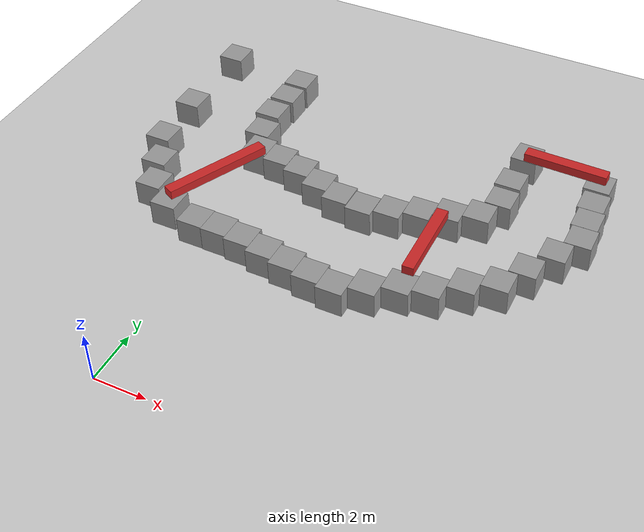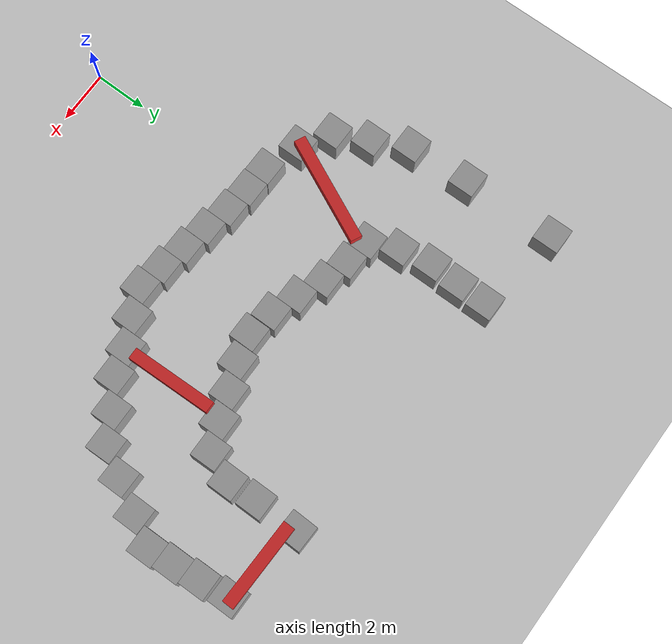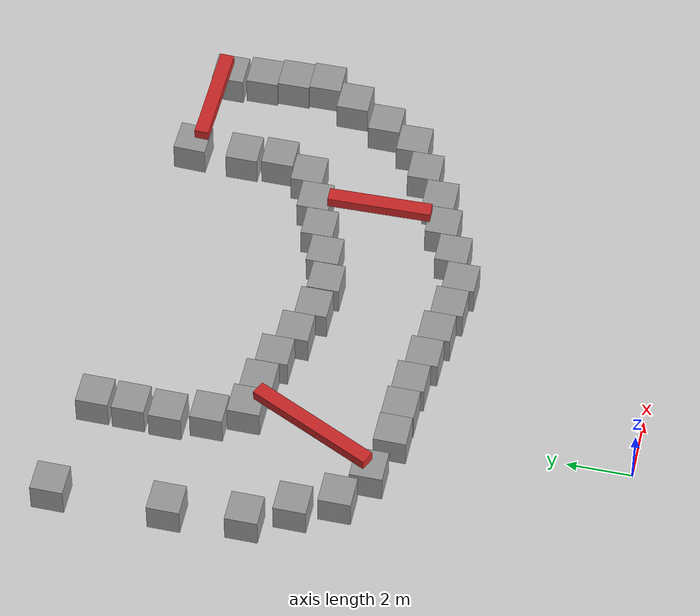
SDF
<sdf version="1.7">
 <world name="default">
  <model name="ground_plane">
   <static>1</static>
   <link name="link">
    <collision name="collision">
     <geometry><plane><normal>0 0 1</normal><size>100 100</size></plane></geometry>
     <surface><friction><ode><mu>100</mu><mu2>50</mu2></ode></friction></surface>
    </collision>
    <visual name="visual">
     <cast_shadows>0</cast_shadows>
     <geometry><plane><normal>0 0 1</normal><size>100 100</size></plane></geometry>
     <material>
      <script><uri>file://media/materials/scripts/gazebo.material</uri><name>Gazebo/Grey</name></script>
     </material>
    </visual>
   </link>
  </model>
  <model name="unit_box">
   <pose>-0.526604 7.20124 0.5 0 0 -0.00372</pose>
   <link name="link">
    <inertial>
     <mass>1</mass>
     <inertia>
      <ixx>0.166667</ixx>
      <ixy>0</ixy>
      <ixz>0</ixz>
      <iyy>0.166667</iyy>
      <iyz>0</iyz>
      <izz>0.166667</izz>
     </inertia>
    </inertial>
    <collision name="collision"><geometry><box><size>1 1 1</size></box></geometry></collision>
    <visual name="visual">
     <geometry><box><size>1 1 1</size></box></geometry>
     <material>
      <script><name>Gazebo/Grey</name><uri>file://media/materials/scripts/gazebo.material</uri></script>
     </material>
    </visual>
   </link>
  </model>
  <model name="unit_box_0">
   <pose>-0.443298 11.6969 0.5 0 0 -0.000523</pose>
   <link name="link">
    <inertial>
     <mass>1</mass>
     <inertia>
      <ixx>0.166667</ixx>
      <ixy>0</ixy>
      <ixz>0</ixz>
      <iyy>0.166667</iyy>
      <iyz>0</iyz>
      <izz>0.166667</izz>
     </inertia>
    </inertial>
    <collision name="collision"><geometry><box><size>1 1 1</size></box></geometry></collision>
    <visual name="visual">
     <geometry><box><size>1 1 1</size></box></geometry>
     <material>
      <script><name>Gazebo/Grey</name><uri>file://media/materials/scripts/gazebo.material</uri></script>
     </material>
    </visual>
   </link>
  </model>
  <model name="unit_box_1">
   <pose>0.473311 7.1762 0.499995 -1e-05 -0 -0.00372</pose>
   <link name="link">
    <inertial>
     <mass>1</mass>
     <inertia>
      <ixx>0.166667</ixx>
      <ixy>0</ixy>
      <ixz>0</ixz>
      <iyy>0.166667</iyy>
      <iyz>0</iyz>
      <izz>0.166667</izz>
     </inertia>
    </inertial>
    <collision name="collision"><geometry><box><size>1 1 1</size></box></geometry></collision>
    <visual name="visual">
     <geometry><box><size>1 1 1</size></box></geometry>
     <material>
      <script><name>Gazebo/Grey</name><uri>file://media/materials/scripts/gazebo.material</uri></script>
     </material>
    </visual>
   </link>
  </model>
  <model name="unit_box_2">
   <pose>1.47302 7.07448 0.499995 0 1e-05 -0.003884</pose>
   <link name="link">
    <inertial>
     <mass>1</mass>
     <inertia>
      <ixx>0.166667</ixx>
      <ixy>0</ixy>
      <ixz>0</ixz>
      <iyy>0.166667</iyy>
      <iyz>0</iyz>
      <izz>0.166667</izz>
     </inertia>
    </inertial>
    <collision name="collision"><geometry><box><size>1 1 1</size></box></geometry></collision>
    <visual name="visual">
     <geometry><box><size>1 1 1</size></box></geometry>
     <material>
      <script><name>Gazebo/Grey</name><uri>file://media/materials/scripts/gazebo.material</uri></script>
     </material>
    </visual>
   </link>
  </model>
  <model name="unit_box_3">
   <pose>2.4724 6.86705 0.499995 -0 1e-05 -0.003816</pose>
   <link name="link">
    <inertial>
     <mass>1</mass>
     <inertia>
      <ixx>0.166667</ixx>
      <ixy>0</ixy>
      <ixz>0</ixz>
      <iyy>0.166667</iyy>
      <iyz>0</iyz>
      <izz>0.166667</izz>
     </inertia>
    </inertial>
    <collision name="collision"><geometry><box><size>1 1 1</size></box></geometry></collision>
    <visual name="visual">
     <geometry><box><size>1 1 1</size></box></geometry>
     <material>
      <script><name>Gazebo/Grey</name><uri>file://media/materials/scripts/gazebo.material</uri></script>
     </material>
    </visual>
   </link>
  </model>
  <model name="unit_box_4">
   <pose>0.557502 11.5442 0.5 0 -0 0.000137</pose>
   <link name="link">
    <inertial>
     <mass>1</mass>
     <inertia>
      <ixx>0.166667</ixx>
      <ixy>0</ixy>
      <ixz>0</ixz>
      <iyy>0.166667</iyy>
      <iyz>0</iyz>
      <izz>0.166667</izz>
     </inertia>
    </inertial>
    <collision name="collision"><geometry><box><size>1 1 1</size></box></geometry></collision>
    <visual name="visual">
     <geometry><box><size>1 1 1</size></box></geometry>
     <material>
      <script><name>Gazebo/Grey</name><uri>file://media/materials/scripts/gazebo.material</uri></script>
     </material>
    </visual>
   </link>
  </model>
  <model name="unit_box_5">
   <pose>1.56131 11.2931 0.499995 0 -1e-05 -0.001514</pose>
   <link name="link">
    <inertial>
     <mass>1</mass>
     <inertia>
      <ixx>0.166667</ixx>
      <ixy>0</ixy>
      <ixz>0</ixz>
      <iyy>0.166667</iyy>
      <iyz>0</iyz>
      <izz>0.166667</izz>
     </inertia>
    </inertial>
    <collision name="collision"><geometry><box><size>1 1 1</size></box></geometry></collision>
    <visual name="visual">
     <geometry><box><size>1 1 1</size></box></geometry>
     <material>
      <script><name>Gazebo/Grey</name><uri>file://media/materials/scripts/gazebo.material</uri></script>
     </material>
    </visual>
   </link>
  </model>
  <model name="unit_box_6">
   <pose>2.56069 10.8846 0.499995 -0 -1e-05 -0.001517</pose>
   <link name="link">
    <inertial>
     <mass>1</mass>
     <inertia>
      <ixx>0.166667</ixx>
      <ixy>0</ixy>
      <ixz>0</ixz>
      <iyy>0.166667</iyy>
      <iyz>0</iyz>
      <izz>0.166667</izz>
     </inertia>
    </inertial>
    <collision name="collision"><geometry><box><size>1 1 1</size></box></geometry></collision>
    <visual name="visual">
     <geometry><box><size>1 1 1</size></box></geometry>
     <material>
      <script><name>Gazebo/Grey</name><uri>file://media/materials/scripts/gazebo.material</uri></script>
     </material>
    </visual>
   </link>
  </model>
  <model name="unit_box_7">
   <pose>3.4724 6.69284 0.5 -0 1e-06 -0.002959</pose>
   <link name="link">
    <inertial>
     <mass>1</mass>
     <inertia>
      <ixx>0.166667</ixx>
      <ixy>0</ixy>
      <ixz>0</ixz>
      <iyy>0.166667</iyy>
      <iyz>0</iyz>
      <izz>0.166667</izz>
     </inertia>
    </inertial>
    <collision name="collision"><geometry><box><size>1 1 1</size></box></geometry></collision>
    <visual name="visual">
     <geometry><box><size>1 1 1</size></box></geometry>
     <material>
      <script><name>Gazebo/Grey</name><uri>file://media/materials/scripts/gazebo.material</uri></script>
     </material>
    </visual>
   </link>
  </model>
  <model name="unit_box_8">
   <pose>3.56065 10.5336 0.499995 1e-05 -0 -0.001533</pose>
   <link name="link">
    <inertial>
     <mass>1</mass>
     <inertia>
      <ixx>0.166667</ixx>
      <ixy>0</ixy>
      <ixz>0</ixz>
      <iyy>0.166667</iyy>
      <iyz>0</iyz>
      <izz>0.166667</izz>
     </inertia>
    </inertial>
    <collision name="collision"><geometry><box><size>1 1 1</size></box></geometry></collision>
    <visual name="visual">
     <geometry><box><size>1 1 1</size></box></geometry>
     <material>
      <script><name>Gazebo/Grey</name><uri>file://media/materials/scripts/gazebo.material</uri></script>
     </material>
    </visual>
   </link>
  </model>
  <model name="unit_box_9">
   <pose>4.47191 6.50319 0.5 -0 -0 -0.002823</pose>
   <link name="link">
    <inertial>
     <mass>1</mass>
     <inertia>
      <ixx>0.166667</ixx>
      <ixy>0</ixy>
      <ixz>0</ixz>
      <iyy>0.166667</iyy>
      <iyz>0</iyz>
      <izz>0.166667</izz>
     </inertia>
    </inertial>
    <collision name="collision"><geometry><box><size>1 1 1</size></box></geometry></collision>
    <visual name="visual">
     <geometry><box><size>1 1 1</size></box></geometry>
     <material>
      <script><name>Gazebo/Grey</name><uri>file://media/materials/scripts/gazebo.material</uri></script>
     </material>
    </visual>
   </link>
  </model>
  <model name="unit_box_10">
   <pose>4.58383 10.3824 0.499995 0 -1e-05 0</pose>
   <link name="link">
    <inertial>
     <mass>1</mass>
     <inertia>
      <ixx>0.166667</ixx>
      <ixy>0</ixy>
      <ixz>0</ixz>
      <iyy>0.166667</iyy>
      <iyz>0</iyz>
      <izz>0.166667</izz>
     </inertia>
    </inertial>
    <collision name="collision"><geometry><box><size>1 1 1</size></box></geometry></collision>
    <visual name="visual">
     <geometry><box><size>1 1 1</size></box></geometry>
     <material>
      <script><name>Gazebo/Grey</name><uri>file://media/materials/scripts/gazebo.material</uri></script>
     </material>
    </visual>
   </link>
  </model>
  <model name="unit_box_11">
   <pose>5.47152 6.35499 0.5 -0 -0 -0.002771</pose>
   <link name="link">
    <inertial>
     <mass>1</mass>
     <inertia>
      <ixx>0.166667</ixx>
      <ixy>0</ixy>
      <ixz>0</ixz>
      <iyy>0.166667</iyy>
      <iyz>0</iyz>
      <izz>0.166667</izz>
     </inertia>
    </inertial>
    <collision name="collision"><geometry><box><size>1 1 1</size></box></geometry></collision>
    <visual name="visual">
     <geometry><box><size>1 1 1</size></box></geometry>
     <material>
      <script><name>Gazebo/Grey</name><uri>file://media/materials/scripts/gazebo.material</uri></script>
     </material>
    </visual>
   </link>
  </model>
  <model name="unit_box_12">
   <pose>6.4733 6.79545 0.5 0 -0 0.006562</pose>
   <link name="link">
    <inertial>
     <mass>1</mass>
     <inertia>
      <ixx>0.166667</ixx>
      <ixy>0</ixy>
      <ixz>0</ixz>
      <iyy>0.166667</iyy>
      <iyz>0</iyz>
      <izz>0.166667</izz>
     </inertia>
    </inertial>
    <collision name="collision"><geometry><box><size>1 1 1</size></box></geometry></collision>
    <visual name="visual">
     <geometry><box><size>1 1 1</size></box></geometry>
     <material>
      <script><name>Gazebo/Grey</name><uri>file://media/materials/scripts/gazebo.material</uri></script>
     </material>
    </visual>
   </link>
  </model>
  <model name="unit_box_13">
   <pose>7.47097 7.31149 0.499942 -4.9e-05 -2.1e-05 0.015315</pose>
   <link name="link">
    <inertial>
     <mass>1</mass>
     <inertia>
      <ixx>0.166667</ixx>
      <ixy>0</ixy>
      <ixz>0</ixz>
      <iyy>0.166667</iyy>
      <iyz>0</iyz>
      <izz>0.166667</izz>
     </inertia>
    </inertial>
    <collision name="collision"><geometry><box><size>1 1 1</size></box></geometry></collision>
    <visual name="visual">
     <geometry><box><size>1 1 1</size></box></geometry>
     <material>
      <script><name>Gazebo/Grey</name><uri>file://media/materials/scripts/gazebo.material</uri></script>
     </material>
    </visual>
   </link>
  </model>
  <model name="unit_box_14">
   <pose>5.59272 10.6388 0.499995 -1e-05 -0 0.007795</pose>
   <link name="link">
    <inertial>
     <mass>1</mass>
     <inertia>
      <ixx>0.166667</ixx>
      <ixy>0</ixy>
      <ixz>0</ixz>
      <iyy>0.166667</iyy>
      <iyz>0</iyz>
      <izz>0.166667</izz>
     </inertia>
    </inertial>
    <collision name="collision"><geometry><box><size>1 1 1</size></box></geometry></collision>
    <visual name="visual">
     <geometry><box><size>1 1 1</size></box></geometry>
     <material>
      <script><name>Gazebo/Grey</name><uri>file://media/materials/scripts/gazebo.material</uri></script>
     </material>
    </visual>
   </link>
  </model>
  <model name="unit_box_15">
   <pose>6.59032 11.0295 0.499995 0 1e-05 0.012888</pose>
   <link name="link">
    <inertial>
     <mass>1</mass>
     <inertia>
      <ixx>0.166667</ixx>
      <ixy>0</ixy>
      <ixz>0</ixz>
      <iyy>0.166667</iyy>
      <iyz>0</iyz>
      <izz>0.166667</izz>
     </inertia>
    </inertial>
    <collision name="collision"><geometry><box><size>1 1 1</size></box></geometry></collision>
    <visual name="visual">
     <geometry><box><size>1 1 1</size></box></geometry>
     <material>
      <script><name>Gazebo/Grey</name><uri>file://media/materials/scripts/gazebo.material</uri></script>
     </material>
    </visual>
   </link>
  </model>
  <model name="unit_box_16">
   <pose>7.58676 11.3877 0.499834 0.000162 -2.5e-05 0.01422</pose>
   <link name="link">
    <inertial>
     <mass>1</mass>
     <inertia>
      <ixx>0.166667</ixx>
      <ixy>0</ixy>
      <ixz>0</ixz>
      <iyy>0.166667</iyy>
      <iyz>0</iyz>
      <izz>0.166667</izz>
     </inertia>
    </inertial>
    <collision name="collision"><geometry><box><size>1 1 1</size></box></geometry></collision>
    <visual name="visual">
     <geometry><box><size>1 1 1</size></box></geometry>
     <material>
      <script><name>Gazebo/Grey</name><uri>file://media/materials/scripts/gazebo.material</uri></script>
     </material>
    </visual>
   </link>
  </model>
  <model name="unit_box_17">
   <pose>8.46684 7.61038 0.499995 1e-05 -0 0.01482</pose>
   <link name="link">
    <inertial>
     <mass>1</mass>
     <inertia>
      <ixx>0.166667</ixx>
      <ixy>0</ixy>
      <ixz>0</ixz>
      <iyy>0.166667</iyy>
      <iyz>0</iyz>
      <izz>0.166667</izz>
     </inertia>
    </inertial>
    <collision name="collision"><geometry><box><size>1 1 1</size></box></geometry></collision>
    <visual name="visual">
     <geometry><box><size>1 1 1</size></box></geometry>
     <material>
      <script><name>Gazebo/Grey</name><uri>file://media/materials/scripts/gazebo.material</uri></script>
     </material>
    </visual>
   </link>
  </model>
  <model name="unit_box_18">
   <pose>9.45707 8.28467 0.499995 1e-05 -0 0.017206</pose>
   <link name="link">
    <inertial>
     <mass>1</mass>
     <inertia>
      <ixx>0.166667</ixx>
      <ixy>0</ixy>
      <ixz>0</ixz>
      <iyy>0.166667</iyy>
      <iyz>0</iyz>
      <izz>0.166667</izz>
     </inertia>
    </inertial>
    <collision name="collision"><geometry><box><size>1 1 1</size></box></geometry></collision>
    <visual name="visual">
     <geometry><box><size>1 1 1</size></box></geometry>
     <material>
      <script><name>Gazebo/Grey</name><uri>file://media/materials/scripts/gazebo.material</uri></script>
     </material>
    </visual>
   </link>
  </model>
  <model name="unit_box_19">
   <pose>8.58109 11.8007 0.499995 -1e-05 -0 0.014428</pose>
   <link name="link">
    <inertial>
     <mass>1</mass>
     <inertia>
      <ixx>0.166667</ixx>
      <ixy>0</ixy>
      <ixz>0</ixz>
      <iyy>0.166667</iyy>
      <iyz>0</iyz>
      <izz>0.166667</izz>
     </inertia>
    </inertial>
    <collision name="collision"><geometry><box><size>1 1 1</size></box></geometry></collision>
    <visual name="visual">
     <geometry><box><size>1 1 1</size></box></geometry>
     <material>
      <script><name>Gazebo/Grey</name><uri>file://media/materials/scripts/gazebo.material</uri></script>
     </material>
    </visual>
   </link>
  </model>
  <model name="unit_box_20">
   <pose>10.4486 8.84699 0.499995 -1e-05 0 0.015731</pose>
   <link name="link">
    <inertial>
     <mass>1</mass>
     <inertia>
      <ixx>0.166667</ixx>
      <ixy>0</ixy>
      <ixz>0</ixz>
      <iyy>0.166667</iyy>
      <iyz>0</iyz>
      <izz>0.166667</izz>
     </inertia>
    </inertial>
    <collision name="collision"><geometry><box><size>1 1 1</size></box></geometry></collision>
    <visual name="visual">
     <geometry><box><size>1 1 1</size></box></geometry>
     <material>
      <script><name>Gazebo/Grey</name><uri>file://media/materials/scripts/gazebo.material</uri></script>
     </material>
    </visual>
   </link>
  </model>
  <model name="unit_box_21">
   <pose>9.0321 12.8398 0.499995 -1e-05 -0 1.7e-05</pose>
   <link name="link">
    <inertial>
     <mass>1</mass>
     <inertia>
      <ixx>0.166667</ixx>
      <ixy>0</ixy>
      <ixz>0</ixz>
      <iyy>0.166667</iyy>
      <iyz>0</iyz>
      <izz>0.166667</izz>
     </inertia>
    </inertial>
    <collision name="collision"><geometry><box><size>1 1 1</size></box></geometry></collision>
    <visual name="visual">
     <geometry><box><size>1 1 1</size></box></geometry>
     <material>
      <script><name>Gazebo/Grey</name><uri>file://media/materials/scripts/gazebo.material</uri></script>
     </material>
    </visual>
   </link>
  </model>
  <model name="unit_box_22">
   <pose>11.0664 9.87961 0.499995 -1e-05 -0 -3e-06</pose>
   <link name="link">
    <inertial>
     <mass>1</mass>
     <inertia>
      <ixx>0.166667</ixx>
      <ixy>0</ixy>
      <ixz>0</ixz>
      <iyy>0.166667</iyy>
      <iyz>0</iyz>
      <izz>0.166667</izz>
     </inertia>
    </inertial>
    <collision name="collision"><geometry><box><size>1 1 1</size></box></geometry></collision>
    <visual name="visual">
     <geometry><box><size>1 1 1</size></box></geometry>
     <material>
      <script><name>Gazebo/Grey</name><uri>file://media/materials/scripts/gazebo.material</uri></script>
     </material>
    </visual>
   </link>
  </model>
  <model name="unit_box_23">
   <pose>11.7095 11.0275 0.499995 0 -1e-05 0</pose>
   <link name="link">
    <inertial>
     <mass>1</mass>
     <inertia>
      <ixx>0.166667</ixx>
      <ixy>0</ixy>
      <ixz>0</ixz>
      <iyy>0.166667</iyy>
      <iyz>0</iyz>
      <izz>0.166667</izz>
     </inertia>
    </inertial>
    <collision name="collision"><geometry><box><size>1 1 1</size></box></geometry></collision>
    <visual name="visual">
     <geometry><box><size>1 1 1</size></box></geometry>
     <material>
      <script><name>Gazebo/Grey</name><uri>file://media/materials/scripts/gazebo.material</uri></script>
     </material>
    </visual>
   </link>
  </model>
  <model name="unit_box_24">
   <pose>12.3045 12.0441 0.499995 0 -1e-05 0.01059</pose>
   <link name="link">
    <inertial>
     <mass>1</mass>
     <inertia>
      <ixx>0.166667</ixx>
      <ixy>0</ixy>
      <ixz>0</ixz>
      <iyy>0.166667</iyy>
      <iyz>0</iyz>
      <izz>0.166667</izz>
     </inertia>
    </inertial>
    <collision name="collision"><geometry><box><size>1 1 1</size></box></geometry></collision>
    <visual name="visual">
     <geometry><box><size>1 1 1</size></box></geometry>
     <material>
      <script><name>Gazebo/Grey</name><uri>file://media/materials/scripts/gazebo.material</uri></script>
     </material>
    </visual>
   </link>
  </model>
  <model name="unit_box_25">
   <pose>8.97791 13.9722 0.499995 0 -1e-05 0</pose>
   <link name="link">
    <inertial>
     <mass>1</mass>
     <inertia>
      <ixx>0.166667</ixx>
      <ixy>0</ixy>
      <ixz>0</ixz>
      <iyy>0.166667</iyy>
      <iyz>0</iyz>
      <izz>0.166667</izz>
     </inertia>
    </inertial>
    <collision name="collision"><geometry><box><size>1 1 1</size></box></geometry></collision>
    <visual name="visual">
     <geometry><box><size>1 1 1</size></box></geometry>
     <material>
      <script><name>Gazebo/Grey</name><uri>file://media/materials/scripts/gazebo.material</uri></script>
     </material>
    </visual>
   </link>
  </model>
  <model name="unit_box_26">
   <pose>12.2214 13.0435 0.5 0 -0 0.010546</pose>
   <link name="link">
    <inertial>
     <mass>1</mass>
     <inertia>
      <ixx>0.166667</ixx>
      <ixy>0</ixy>
      <ixz>0</ixz>
      <iyy>0.166667</iyy>
      <iyz>0</iyz>
      <izz>0.166667</izz>
     </inertia>
    </inertial>
    <collision name="collision"><geometry><box><size>1 1 1</size></box></geometry></collision>
    <visual name="visual">
     <geometry><box><size>1 1 1</size></box></geometry>
     <material>
      <script><name>Gazebo/Grey</name><uri>file://media/materials/scripts/gazebo.material</uri></script>
     </material>
    </visual>
   </link>
  </model>
  <model name="unit_box_27">
   <pose>12.1184 14.0428 0.499995 0 -1e-05 0.010987</pose>
   <link name="link">
    <inertial>
     <mass>1</mass>
     <inertia>
      <ixx>0.166667</ixx>
      <ixy>0</ixy>
      <ixz>0</ixz>
      <iyy>0.166667</iyy>
      <iyz>0</iyz>
      <izz>0.166667</izz>
     </inertia>
    </inertial>
    <collision name="collision"><geometry><box><size>1 1 1</size></box></geometry></collision>
    <visual name="visual">
     <geometry><box><size>1 1 1</size></box></geometry>
     <material>
      <script><name>Gazebo/Grey</name><uri>file://media/materials/scripts/gazebo.material</uri></script>
     </material>
    </visual>
   </link>
  </model>
  <model name="unit_box_28">
   <pose>12.0032 15.1306 0.499998 4e-06 0 0.001433</pose>
   <link name="link">
    <inertial>
     <mass>1</mass>
     <inertia>
      <ixx>0.166667</ixx>
      <ixy>0</ixy>
      <ixz>0</ixz>
      <iyy>0.166667</iyy>
      <iyz>0</iyz>
      <izz>0.166667</izz>
     </inertia>
    </inertial>
    <collision name="collision"><geometry><box><size>1 1 1</size></box></geometry></collision>
    <visual name="visual">
     <geometry><box><size>1 1 1</size></box></geometry>
     <material>
      <script><name>Gazebo/Grey</name><uri>file://media/materials/scripts/gazebo.material</uri></script>
     </material>
    </visual>
   </link>
  </model>
  <model name="unit_box_30">
   <pose>9.00415 15.636 0.499982 5e-06 -0 -0.027018</pose>
   <link name="link">
    <inertial>
     <mass>1</mass>
     <inertia>
      <ixx>0.166667</ixx>
      <ixy>0</ixy>
      <ixz>0</ixz>
      <iyy>0.166667</iyy>
      <iyz>0</iyz>
      <izz>0.166667</izz>
     </inertia>
    </inertial>
    <collision name="collision"><geometry><box><size>1 0.999999 1</size></box></geometry></collision>
    <visual name="visual">
     <geometry><box><size>1 0.999999 1</size></box></geometry>
     <material>
      <script><name>Gazebo/Grey</name><uri>file://media/materials/scripts/gazebo.material</uri></script>
     </material>
    </visual>
   </link>
  </model>
  <model name="unit_box_63">
   <pose>-0.908237 12.7329 0.499995 0 -1e-05 0</pose>
   <link name="link">
    <inertial>
     <mass>1</mass>
     <inertia>
      <ixx>0.166667</ixx>
      <ixy>0</ixy>
      <ixz>0</ixz>
      <iyy>0.166667</iyy>
      <iyz>0</iyz>
      <izz>0.166667</izz>
     </inertia>
    </inertial>
    <collision name="collision"><geometry><box><size>1 1 1</size></box></geometry></collision>
    <visual name="visual">
     <geometry><box><size>1 1 1</size></box></geometry>
     <material>
      <script><name>Gazebo/Grey</name><uri>file://media/materials/scripts/gazebo.material</uri></script>
     </material>
    </visual>
   </link>
  </model>
  <model name="unit_box_64">
   <pose>-1.92328 7.62431 0.5 0 1e-06 -7.2e-05</pose>
   <link name="link">
    <inertial>
     <mass>1</mass>
     <inertia>
      <ixx>0.166667</ixx>
      <ixy>0</ixy>
      <ixz>0</ixz>
      <iyy>0.166667</iyy>
      <iyz>0</iyz>
      <izz>0.166667</izz>
     </inertia>
    </inertial>
    <collision name="collision"><geometry><box><size>1 1 1</size></box></geometry></collision>
    <visual name="visual">
     <geometry><box><size>1 1 1</size></box></geometry>
     <material>
      <script><name>Gazebo/Grey</name><uri>file://media/materials/scripts/gazebo.material</uri></script>
     </material>
    </visual>
   </link>
  </model>
  <model name="unit_box_65">
   <pose>-3.02283 8.33383 0.499995 0 -1e-05 0</pose>
   <link name="link">
    <inertial>
     <mass>1</mass>
     <inertia>
      <ixx>0.166667</ixx>
      <ixy>0</ixy>
      <ixz>0</ixz>
      <iyy>0.166667</iyy>
      <iyz>0</iyz>
      <izz>0.166667</izz>
     </inertia>
    </inertial>
    <collision name="collision"><geometry><box><size>1 1 1</size></box></geometry></collision>
    <visual name="visual">
     <geometry><box><size>1 1 1</size></box></geometry>
     <material>
      <script><name>Gazebo/Grey</name><uri>file://media/materials/scripts/gazebo.material</uri></script>
     </material>
    </visual>
   </link>
  </model>
  <model name="unit_box_66">
   <pose>-3.58695 9.5608 0.499995 0 -1e-05 0</pose>
   <link name="link">
    <inertial>
     <mass>1</mass>
     <inertia>
      <ixx>0.166667</ixx>
      <ixy>0</ixy>
      <ixz>0</ixz>
      <iyy>0.166667</iyy>
      <iyz>0</iyz>
      <izz>0.166667</izz>
     </inertia>
    </inertial>
    <collision name="collision"><geometry><box><size>1 1 1</size></box></geometry></collision>
    <visual name="visual">
     <geometry><box><size>1 1 1</size></box></geometry>
     <material>
      <script><name>Gazebo/Grey</name><uri>file://media/materials/scripts/gazebo.material</uri></script>
     </material>
    </visual>
   </link>
  </model>
  <model name="unit_box_67">
   <pose>-4.25429 10.87 0.499995 0 -1e-05 0</pose>
   <link name="link">
    <inertial>
     <mass>1</mass>
     <inertia>
      <ixx>0.166667</ixx>
      <ixy>0</ixy>
      <ixz>0</ixz>
      <iyy>0.166667</iyy>
      <iyz>0</iyz>
      <izz>0.166667</izz>
     </inertia>
    </inertial>
    <collision name="collision"><geometry><box><size>1 1 1</size></box></geometry></collision>
    <visual name="visual">
     <geometry><box><size>1 1 1</size></box></geometry>
     <material>
      <script><name>Gazebo/Grey</name><uri>file://media/materials/scripts/gazebo.material</uri></script>
     </material>
    </visual>
   </link>
  </model>
  <model name="unit_box_68">
   <pose>-1.13031 13.9512 0.499995 0 -1e-05 0</pose>
   <link name="link">
    <inertial>
     <mass>1</mass>
     <inertia>
      <ixx>0.166667</ixx>
      <ixy>0</ixy>
      <ixz>0</ixz>
      <iyy>0.166667</iyy>
      <iyz>0</iyz>
      <izz>0.166667</izz>
     </inertia>
    </inertial>
    <collision name="collision"><geometry><box><size>1 1 1</size></box></geometry></collision>
    <visual name="visual">
     <geometry><box><size>1 1 1</size></box></geometry>
     <material>
      <script><name>Gazebo/Grey</name><uri>file://media/materials/scripts/gazebo.material</uri></script>
     </material>
    </visual>
   </link>
  </model>
  <model name="unit_box_69">
   <pose>-1.08414 15.0957 0.499995 0 -1e-05 0</pose>
   <link name="link">
    <inertial>
     <mass>1</mass>
     <inertia>
      <ixx>0.166667</ixx>
      <ixy>0</ixy>
      <ixz>0</ixz>
      <iyy>0.166667</iyy>
      <iyz>0</iyz>
      <izz>0.166667</izz>
     </inertia>
    </inertial>
    <collision name="collision"><geometry><box><size>1 1 1</size></box></geometry></collision>
    <visual name="visual">
     <geometry><box><size>1 1 1</size></box></geometry>
     <material>
      <script><name>Gazebo/Grey</name><uri>file://media/materials/scripts/gazebo.material</uri></script>
     </material>
    </visual>
   </link>
  </model>
  <model name="unit_box_74">
   <pose>-1.0649 16.2126 0.499995 0 -1e-05 0</pose>
   <link name="link">
    <inertial>
     <mass>1</mass>
     <inertia>
      <ixx>0.166667</ixx>
      <ixy>0</ixy>
      <ixz>0</ixz>
      <iyy>0.166667</iyy>
      <iyz>0</iyz>
      <izz>0.166667</izz>
     </inertia>
    </inertial>
    <collision name="collision"><geometry><box><size>1 1 1</size></box></geometry></collision>
    <visual name="visual">
     <geometry><box><size>1 1 1</size></box></geometry>
     <material>
      <script><name>Gazebo/Grey</name><uri>file://media/materials/scripts/gazebo.material</uri></script>
     </material>
    </visual>
   </link>
  </model>
  <model name="unit_box_76">
   <pose>-4.38284 13.1985 0.499995 0 -1e-05 0</pose>
   <link name="link">
    <inertial>
     <mass>1</mass>
     <inertia>
      <ixx>0.166667</ixx>
      <ixy>0</ixy>
      <ixz>0</ixz>
      <iyy>0.166667</iyy>
      <iyz>0</iyz>
      <izz>0.166667</izz>
     </inertia>
    </inertial>
    <collision name="collision"><geometry><box><size>1 1 1</size></box></geometry></collision>
    <visual name="visual">
     <geometry><box><size>1 1 1</size></box></geometry>
     <material>
      <script><name>Gazebo/Grey</name><uri>file://media/materials/scripts/gazebo.material</uri></script>
     </material>
    </visual>
   </link>
  </model>
  <model name="unit_box_77">
   <pose>-4.43264 16.7258 0.5 -0 -0 -0</pose>
   <link name="link">
    <inertial>
     <mass>1</mass>
     <inertia>
      <ixx>0.166667</ixx>
      <ixy>0</ixy>
      <ixz>0</ixz>
      <iyy>0.166667</iyy>
      <iyz>0</iyz>
      <izz>0.166667</izz>
     </inertia>
    </inertial>
    <collision name="collision"><geometry><box><size>1 1 1</size></box></geometry></collision>
    <visual name="visual">
     <geometry><box><size>1 1 1</size></box></geometry>
     <material>
      <script><name>Gazebo/Grey</name><uri>file://media/materials/scripts/gazebo.material</uri></script>
     </material>
    </visual>
   </link>
  </model>
  <model name="unit_box_80_clone_clone_0">
   <link name="link">
    <inertial>
     <mass>1</mass>
     <inertia>
      <ixx>0.166667</ixx>
      <ixy>0</ixy>
      <ixz>0</ixz>
      <iyy>0.166667</iyy>
      <iyz>0</iyz>
      <izz>0.166667</izz>
     </inertia>
    </inertial>
    <visual name="visual">
     <geometry><box><size>0.435987 3.21473 0.347679</size></box></geometry>
     <material>
      <script><name>Gazebo/Red</name><uri>file://media/materials/scripts/gazebo.material</uri></script>
      <shader type="pixel"><normal_map>__default__</normal_map></shader>
      <ambient>1 0 0 1</ambient>
      <diffuse>1 0 0 1</diffuse>
      <specular>0.1 0.1 0.1 1</specular>
      <emissive>0 0 0 1</emissive>
     </material>
    </visual>
    <collision name="collision">
     <geometry><box><size>0.435987 3.21473 0.347679</size></box></geometry>
     <surface>
      <friction>
       <ode><mu>1</mu><mu2>1</mu2><fdir1>0 0 0</fdir1><slip1>0</slip1><slip2>0</slip2></ode>
       <torsional>
        <coefficient>1</coefficient>
        <patch_radius>0</patch_radius>
        <surface_radius>0</surface_radius>
        <use_patch_radius>1</use_patch_radius>
        <ode><slip>0</slip></ode>
       </torsional>
      </friction>
      <bounce><restitution_coefficient>0</restitution_coefficient><threshold>1e+06</threshold></bounce>
      <contact>
       <collide_without_contact>0</collide_without_contact>
       <collide_without_contact_bitmask>1</collide_without_contact_bitmask>
       <collide_bitmask>1</collide_bitmask>
       <ode>
        <soft_cfm>0</soft_cfm>
        <soft_erp>0.2</soft_erp>
        <kp>1e+13</kp>
        <kd>1</kd>
        <max_vel>0.01</max_vel>
        <min_depth>0</min_depth>
       </ode>
       <bullet>
        <split_impulse>1</split_impulse>
        <split_impulse_penetration_threshold>-0.01</split_impulse_penetration_threshold>
        <soft_cfm>0</soft_cfm>
        <soft_erp>0.2</soft_erp>
        <kp>1e+13</kp>
        <kd>1</kd>
       </bullet>
      </contact>
     </surface>
    </collision>
   </link>
   <static>0</static>
   <pose>7.50985 9.33514 1.17355 -0.000138 -2e-05 0.022275</pose>
  </model>
  <model name="unit_box_80_clone">
   <link name="link">
    <inertial>
     <mass>1</mass>
     <inertia>
      <ixx>0.166667</ixx>
      <ixy>0</ixy>
      <ixz>0</ixz>
      <iyy>0.166667</iyy>
      <iyz>0</iyz>
      <izz>0.166667</izz>
     </inertia>
    </inertial>
    <visual name="visual">
     <geometry><box><size>0.435987 3.21473 0.347679</size></box></geometry>
     <material>
      <script><name>Gazebo/Red</name><uri>file://media/materials/scripts/gazebo.material</uri></script>
      <shader type="pixel"><normal_map>__default__</normal_map></shader>
      <ambient>1 0 0 1</ambient>
      <diffuse>1 0 0 1</diffuse>
      <specular>0.1 0.1 0.1 1</specular>
      <emissive>0 0 0 1</emissive>
     </material>
    </visual>
    <collision name="collision">
     <geometry><box><size>0.435987 3.21473 0.347679</size></box></geometry>
     <surface>
      <friction>
       <ode><mu>1</mu><mu2>1</mu2><fdir1>0 0 0</fdir1><slip1>0</slip1><slip2>0</slip2></ode>
       <torsional>
        <coefficient>1</coefficient>
        <patch_radius>0</patch_radius>
        <surface_radius>0</surface_radius>
        <use_patch_radius>1</use_patch_radius>
        <ode><slip>0</slip></ode>
       </torsional>
      </friction>
      <bounce><restitution_coefficient>0</restitution_coefficient><threshold>1e+06</threshold></bounce>
      <contact>
       <collide_without_contact>0</collide_without_contact>
       <collide_without_contact_bitmask>1</collide_without_contact_bitmask>
       <collide_bitmask>1</collide_bitmask>
       <ode>
        <soft_cfm>0</soft_cfm>
        <soft_erp>0.2</soft_erp>
        <kp>1e+13</kp>
        <kd>1</kd>
        <max_vel>0.01</max_vel>
        <min_depth>0</min_depth>
       </ode>
       <bullet>
        <split_impulse>1</split_impulse>
        <split_impulse_penetration_threshold>-0.01</split_impulse_penetration_threshold>
        <soft_cfm>0</soft_cfm>
        <soft_erp>0.2</soft_erp>
        <kp>1e+13</kp>
        <kd>1</kd>
       </bullet>
      </contact>
     </surface>
    </collision>
   </link>
   <static>0</static>
   <pose>10.6207 15.3314 1.17383 -7e-06 -5e-06 1.54842</pose>
  </model>
  <model name="unit_box_80_clone_clone_0_2">
   <link name="link">
    <inertial>
     <mass>1</mass>
     <inertia>
      <ixx>0.166667</ixx>
      <ixy>0</ixy>
      <ixz>0</ixz>
      <iyy>0.166667</iyy>
      <iyz>0</iyz>
      <izz>0.166667</izz>
     </inertia>
    </inertial>
    <visual name="visual">
     <geometry><box><size>0.435987 4.1589 0.347679</size></box></geometry>
     <material>
      <script><name>Gazebo/Red</name><uri>file://media/materials/scripts/gazebo.material</uri></script>
      <shader type="pixel"><normal_map>__default__</normal_map></shader>
      <ambient>1 0 0 1</ambient>
      <diffuse>1 0 0 1</diffuse>
      <specular>0.1 0.1 0.1 1</specular>
      <emissive>0 0 0 1</emissive>
     </material>
    </visual>
    <collision name="collision">
     <geometry><box><size>0.435987 4.1589 0.347679</size></box></geometry>
     <surface>
      <friction>
       <ode><mu>1</mu><mu2>1</mu2><fdir1>0 0 0</fdir1><slip1>0</slip1><slip2>0</slip2></ode>
       <torsional>
        <coefficient>1</coefficient>
        <patch_radius>0</patch_radius>
        <surface_radius>0</surface_radius>
        <use_patch_radius>1</use_patch_radius>
        <ode><slip>0</slip></ode>
       </torsional>
      </friction>
      <bounce><restitution_coefficient>0</restitution_coefficient><threshold>1e+06</threshold></bounce>
      <contact>
       <collide_without_contact>0</collide_without_contact>
       <collide_without_contact_bitmask>1</collide_without_contact_bitmask>
       <collide_bitmask>1</collide_bitmask>
       <ode>
        <soft_cfm>0</soft_cfm>
        <soft_erp>0.2</soft_erp>
        <kp>1e+13</kp>
        <kd>1</kd>
        <max_vel>0.01</max_vel>
        <min_depth>0</min_depth>
       </ode>
       <bullet>
        <split_impulse>1</split_impulse>
        <split_impulse_penetration_threshold>-0.01</split_impulse_penetration_threshold>
        <soft_cfm>0</soft_cfm>
        <soft_erp>0.2</soft_erp>
        <kp>1e+13</kp>
        <kd>1</kd>
       </bullet>
      </contact>
     </surface>
    </collision>
   </link>
   <static>0</static>
   <pose>-1.06415 9.53629 1.17381 2e-05 4.4e-05 -0.445246</pose>
  </model>
 </world>
</sdf>
